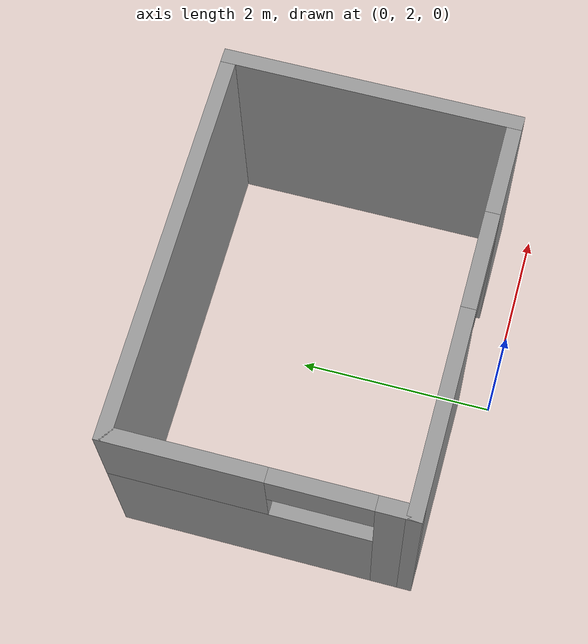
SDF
<?xml version='1.0'?>
<sdf version='1.6'>
  <model name='bathroom'>
    <pose frame=''>0 3.825 0 0 -0 0</pose>
    <link name='Wall_1'>
      <pose frame=''>0 -1.425 0 0 -0 3.14159</pose>
      <visual name='Wall_1_Visual_0'>
        <pose frame=''>-1.5375 0 1.25 0 -0 0</pose>
        <geometry>
          <box>
            <size>1.075 0.15 2.5</size>
          </box>
        </geometry>
        <material>
          <script>
            <uri>file://media/materials/scripts/gazebo.material</uri>
            <name>Gazebo/Grey</name>
          </script>
          <ambient>1 1 1 1</ambient>
        </material>
      </visual>
      <collision name='Wall_1_Collision_0'>
        <geometry>
          <box>
            <size>1.075 0.15 2.5</size>
          </box>
        </geometry>
        <pose frame=''>-1.5375 0 1.25 0 -0 0</pose>
    </collision>
      <visual name='Wall_1_Visual_1'>
        <pose frame=''>1.0375 0 1.25 0 -0 0</pose>
        <geometry>
          <box>
            <size>2.075 0.15 2.5</size>
          </box>
        </geometry>
        <material>
          <script>
            <uri>file://media/materials/scripts/gazebo.material</uri>
            <name>Gazebo/Grey</name>
          </script>
          <ambient>1 1 1 1</ambient>
        </material>
      </visual>
      <collision name='Wall_1_Collision_1'>
        <geometry>
          <box>
            <size>2.075 0.15 2.5</size>
          </box>
        </geometry>
        <pose frame=''>1.0375 0 1.25 0 -0 0</pose>
      </collision>
      <visual name='Wall_1_Visual_2'>
        <pose frame=''>-0.5 0 2.25 0 -0 0</pose>
        <geometry>
          <box>
            <size>1 0.15 0.5</size>
          </box>
        </geometry>
        <material>
          <script>
            <uri>file://media/materials/scripts/gazebo.material</uri>
            <name>Gazebo/Grey</name>
          </script>
          <ambient>1 1 1 1</ambient>
        </material>
      </visual>
      <collision name='Wall_1_Collision_2'>
        <geometry>
          <box>
            <size>1 0.15 0.5</size>
          </box>
        </geometry>
        <pose frame=''>-0.5 0 2.25 0 -0 0</pose>
      </collision>
    </link>
    <link name='Wall_2'>
      <pose frame=''>-2 0 0 0 -0 1.5708</pose>
      <visual name='Wall_2_Visual_0'>
        <pose frame=''>-1.28705 0 1.25 0 -0 0</pose>
        <geometry>
          <box>
            <size>0.425904 0.15 2.5</size>
          </box>
        </geometry>
        <material>
          <script>
            <uri>file://media/materials/scripts/gazebo.material</uri>
            <name>Gazebo/Grey</name>
          </script>
          <ambient>1 1 1 1</ambient>
        </material>
      </visual>
      <collision name='Wall_2_Collision_0'>
        <geometry>
          <box>
            <size>0.425904 0.15 2.5</size>
          </box>
        </geometry>
        <pose frame=''>-1.28705 0 1.25 0 -0 0</pose>
      </collision>
      <visual name='Wall_2_Visual_1'>
        <pose frame=''>0.212952 0 0.75 0 -0 0</pose>
        <geometry>
          <box>
            <size>2.5741 0.15 1.5</size>
          </box>
        </geometry>
        <material>
          <script>
            <uri>file://media/materials/scripts/gazebo.material</uri>
            <name>Gazebo/Grey</name>
          </script>
          <ambient>1 1 1 1</ambient>
        </material>
      </visual>
      <collision name='Wall_2_Collision_1'>
        <geometry>
          <box>
            <size>2.5741 0.15 1.5</size>
          </box>
        </geometry>
        <pose frame=''>0.212952 0 0.75 0 -0 0</pose>
      </collision>
      <visual name='Wall_2_Visual_2'>
        <pose frame=''>0.712952 0 2 0 -0 0</pose>
        <geometry>
          <box>
            <size>1.5741 0.15 1</size>
          </box>
        </geometry>
        <material>
          <script>
            <uri>file://media/materials/scripts/gazebo.material</uri>
            <name>Gazebo/Grey</name>
          </script>
          <ambient>1 1 1 1</ambient>
        </material>
      </visual>
      <collision name='Wall_2_Collision_2'>
        <geometry>
          <box>
            <size>1.5741 0.15 1</size>
          </box>
        </geometry>
        <pose frame=''>0.712952 0 2 0 -0 0</pose>
      </collision>
      <visual name='Wall_2_Visual_3'>
        <pose frame=''>-0.574096 0 2.25 0 -0 0</pose>
        <geometry>
          <box>
            <size>1 0.15 0.5</size>
          </box>
        </geometry>
        <material>
          <script>
            <uri>file://media/materials/scripts/gazebo.material</uri>
            <name>Gazebo/Grey</name>
          </script>
          <ambient>1 1 1 1</ambient>
        </material>
      </visual>
      <collision name='Wall_2_Collision_3'>
        <geometry>
          <box>
            <size>1 0.15 0.5</size>
          </box>
        </geometry>
        <pose frame=''>-0.574096 0 2.25 0 -0 0</pose>
      </collision>
    </link>
    <link name='Wall_3'>
      <collision name='Wall_3_Collision'>
        <geometry>
          <box>
            <size>4.15 0.15 2.5</size>
          </box>
        </geometry>
        <pose frame=''>0 0 1.25 0 -0 0</pose>
      </collision>
      <visual name='Wall_3_Visual'>
        <pose frame=''>0 0 1.25 0 -0 0</pose>
        <geometry>
          <box>
            <size>4.15 0.15 2.5</size>
          </box>
        </geometry>
        <material>
          <script>
            <uri>file://media/materials/scripts/gazebo.material</uri>
            <name>Gazebo/Grey</name>
          </script>
          <ambient>1 1 1 1</ambient>
        </material>
      </visual>
      <pose frame=''>0 1.425 0 0 -0 0</pose>
    </link>
    <link name='Wall_4'>
      <collision name='Wall_4_Collision'>
        <geometry>
          <box>
            <size>3 0.15 2.5</size>
          </box>
        </geometry>
        <pose frame=''>0 0 1.25 0 -0 0</pose>
      </collision>
      <visual name='Wall_4_Visual'>
        <pose frame=''>0 0 1.25 0 -0 0</pose>
        <geometry>
          <box>
            <size>3 0.15 2.5</size>
          </box>
        </geometry>
        <material>
          <script>
            <uri>file://media/materials/scripts/gazebo.material</uri>
            <name>Gazebo/Grey</name>
          </script>
          <ambient>1 1 1 1</ambient>
        </material>
      </visual>
      <pose frame=''>2 0 0 0 0 -1.5708</pose>
    </link>
    <static>1</static>
  </model>
</sdf>
